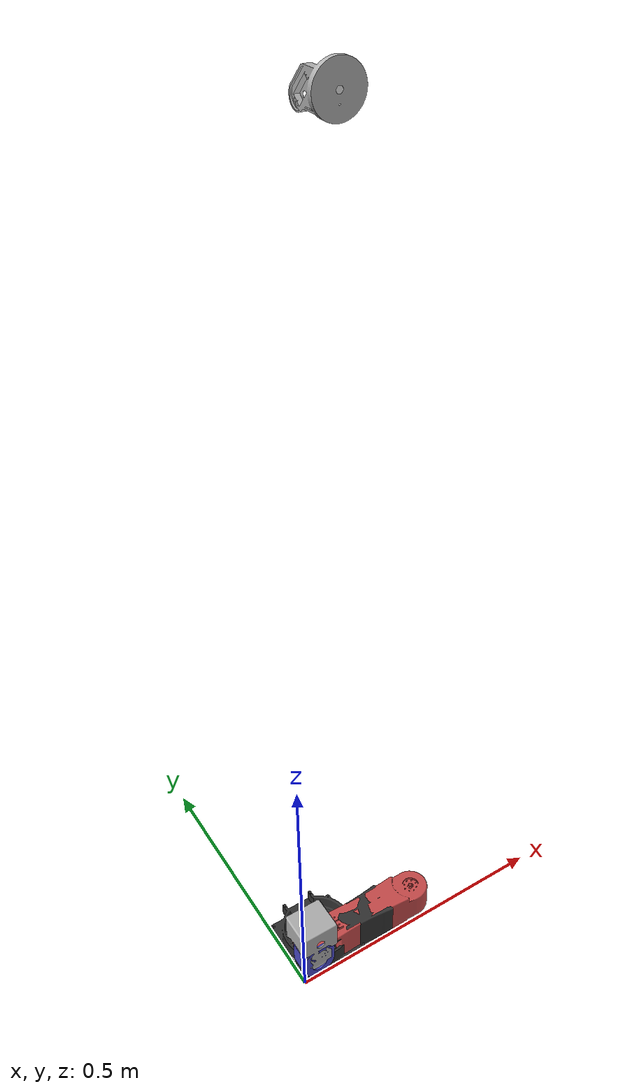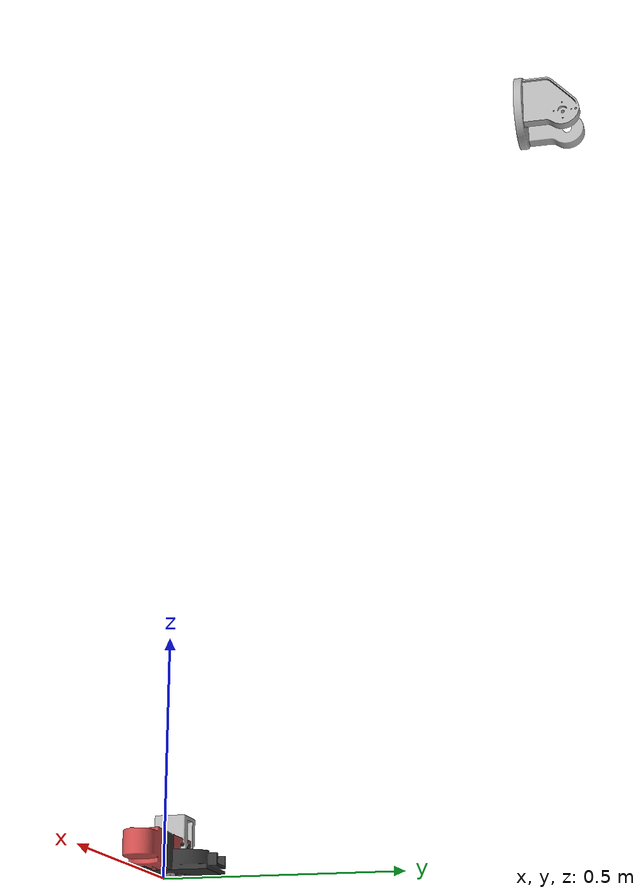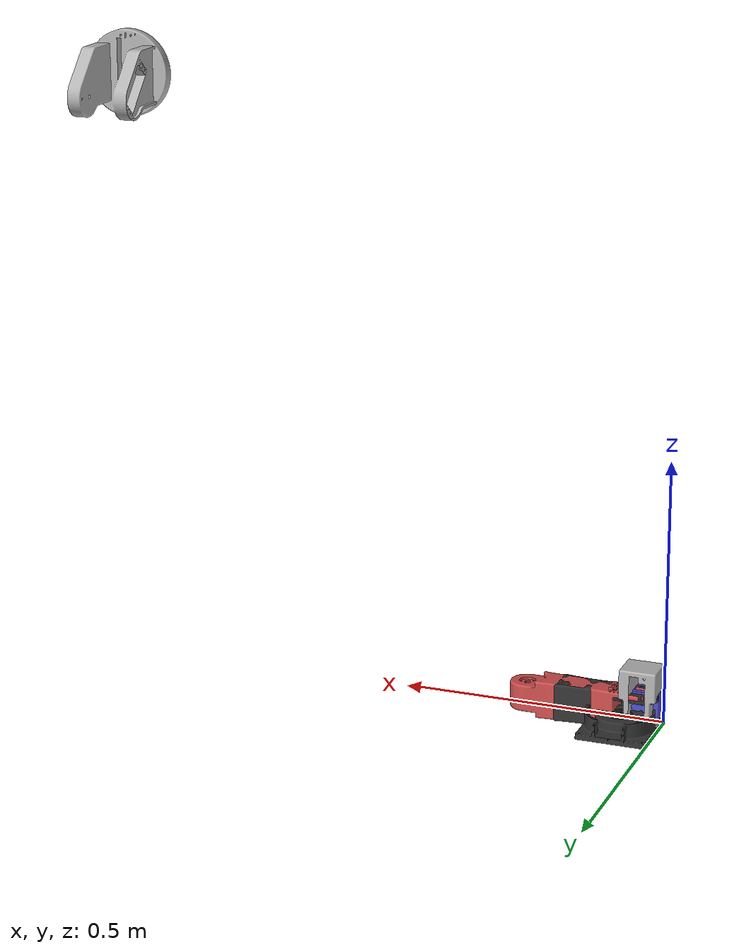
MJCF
<mujoco model="ds51150_6axis">
    <compiler angle="degree" coordinate="local" />
    <option gravity="0 0 0" /> <!-- see header: re-enable once joint origins are real -->

    <asset>
        <mesh name="base"  file="Gerhard_Nell/ds51150-servo-6-axis-robot/DS51150 Joint 1 Base.STL" scale="0.001 0.001 0.001" />
        <mesh name="link1" file="Gerhard_Nell/ds51150-servo-6-axis-robot/DS5115 Joint 1.STL"       scale="0.001 0.001 0.001" />
        <mesh name="link2" file="Gerhard_Nell/ds51150-servo-6-axis-robot/DS51150  Joint 2.STL"     scale="0.001 0.001 0.001" />
        <mesh name="link3" file="Gerhard_Nell/ds51150-servo-6-axis-robot/DS51150  Joint 3.STL"     scale="0.001 0.001 0.001" />
        <mesh name="link4" file="Gerhard_Nell/ds51150-servo-6-axis-robot/DS51150  Joint 4.STL"     scale="0.001 0.001 0.001" />
        <mesh name="link5" file="Gerhard_Nell/ds51150-servo-6-axis-robot/DS51150  Joint 5.STL"     scale="0.001 0.001 0.001" />
        <mesh name="link6" file="Gerhard_Nell/ds51150-servo-6-axis-robot/DS51150  Joint 6.STL"     scale="0.001 0.001 0.001" />

        <material name="dark"    rgba="0.2 0.2 0.2 1"/>
        <material name="light"   rgba="0.7 0.7 0.7 1"/>
        <material name="accent1" rgba="0.8 0.3 0.3 1"/>
        <material name="accent2" rgba="0.3 0.3 0.8 1"/>
    </asset>

    <worldbody>
        <light pos="0 0 3" dir="0 0 -1" diffuse="1 1 1"/>

        <body name="base_link" pos="0 0 0">
            <geom type="mesh" mesh="base" material="dark" />

            <!-- TODO(kinematics): every pos below is a placeholder. See header. -->
            <body name="link1" pos="0 0 0">
                <!-- Base yaw. DS51150: confirm 180 or 270 deg variant before setting range. -->
                <joint name="joint1" type="hinge" axis="0 0 1" />
                <geom type="mesh" mesh="link1" material="light" />

                <body name="link2" pos="0 0 0">
                    <joint name="joint2" type="hinge" axis="0 1 0" />
                    <geom type="mesh" mesh="link2" material="accent1" />

                    <body name="link3" pos="0 0 0">
                        <joint name="joint3" type="hinge" axis="0 1 0" />
                        <geom type="mesh" mesh="link3" material="light" />

                        <body name="link4" pos="0 0 0">
                            <joint name="joint4" type="hinge" axis="1 0 0" />
                            <geom type="mesh" mesh="link4" material="dark" />

                            <body name="link5" pos="0 0 0">
                                <joint name="joint5" type="hinge" axis="0 1 0" />
                                <geom type="mesh" mesh="link5" material="accent2" />

                                <body name="link6" pos="0 0 0">
                                    <joint name="joint6" type="hinge" axis="1 0 0" />
                                    <geom type="mesh" mesh="link6" material="light" />
                                </body>
                            </body>
                        </body>
                    </body>
                </body>
            </body>
        </body>
    </worldbody>
</mujoco>
